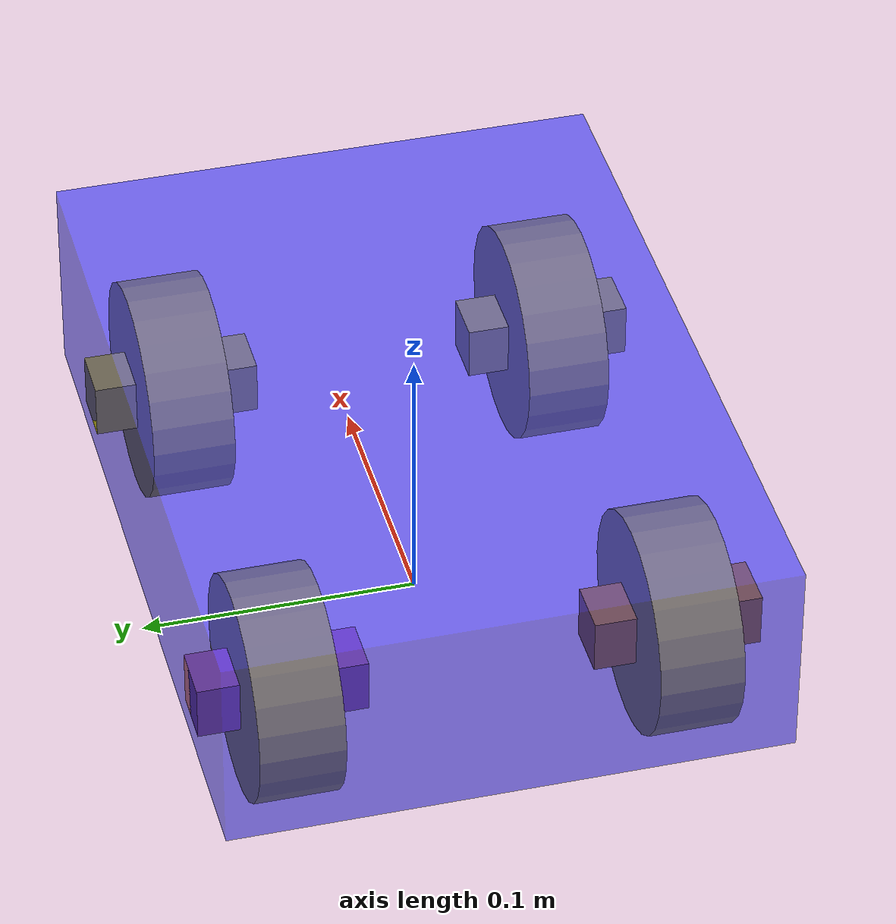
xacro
<?xml version="1.0" ?>
<robot name="ackermann_base_final" xmlns:xacro="http://www.ros.org/wiki/xacro">
    <!-- 参数 -->
    <xacro:property name="PI" value="3.1415926" />
    <!-- 车轮参数 -->
    <xacro:property name="wheel_radius" value="0.04" />
    <xacro:property name="wheel_height" value="0.03" />
    <xacro:property name="wheel_in" value="0.0125" />
    <!-- 基座参数 -->
    <xacro:property name="base_height" value="0.075" />
    <xacro:property name="base_length" value="0.275" />
    <xacro:property name="base_width" value="0.2" />
    <!-- 车轮参数 -->
    <xacro:property name="steering_link_length" value="0.02" />
    <xacro:property name="steering_link_width" value="0.06" />
    <xacro:property name="steering_link_height" value="0.02" />
    <!-- 基座离地高度 -->
    <xacro:property name="base_ground_clearance" value="0.02" />
    <!-- 质量参数 -->
    <xacro:property name="base_m" value="2" />
    <xacro:property name="wheel_m" value="0.5" />
    <xacro:property name="steering_link_m" value="0.05" />

    <xacro:include filename="inertial_matrix.xacro"/>

    <link name="base_footprint">
        <visual>
            <origin xyz="0.0 0.0 0.0" rpy="0.0 0.0 0.0"/>
            <geometry>
                <sphere radius="0.001"/>
            </geometry>
            <material name="yellow">
                <color rgba="0.8 0.3 0.1 0.5" />
            </material>
        </visual>
        <collision>
            <origin xyz="0.0 0.0 0.0" rpy="0.0 0.0 0.0"/>
            <geometry>
                <sphere radius="0"/>
            </geometry>
        </collision>
    </link>

    <link name="base_link">
        <xacro:Box_inertial_matrix m="${base_m}" l="${base_length}" w="${base_width}" h="${base_height}" />
        <visual>
            <origin xyz="0.0 0.0 0.0" rpy="0.0 0.0 0.0"/>
            <geometry>
                <box size="${base_length} ${base_width} ${base_height}"/>
            </geometry>
            <material name="blue">
                <color rgba="0 0 1.0 0.5" />
            </material>
        </visual>
        <collision>
            <origin xyz="0.0 0.0 0.0" rpy="0.0 0.0 0.0"/>
            <geometry>
                <box size="0 0 0"/>
            </geometry>
        </collision>
    </link>
    <gazebo reference="base_link">
            <material>Gazebo/Blue</material>
        </gazebo>
    <joint name="base_link2base_footprint" type="fixed">
        <parent link="base_footprint"/>
        <child link="base_link"/>
        <origin xyz="0.0 0.0 ${base_ground_clearance+base_height/2+0.001}" rpy="0.0 0.0 0.0"/>
    </joint>

    <xacro:macro name="define_steer_joint" params="name flag">
        <link name="${name}_steer_link">
            <xacro:Box_inertial_matrix m="${steering_link_m}" l="${steering_link_length}" w="${steering_link_width}" h="${steering_link_height}" />
            <visual>
                <origin xyz="0.0 0.0 0.0" rpy="0.0 0.0 0.0"/>
                <geometry>
                    <box size="${steering_link_length} ${steering_link_width} ${steering_link_height}"/>
                </geometry>
            </visual>
            <collision>
                <origin xyz="0.0 0.0 0.0" rpy="0.0 0.0 0.0"/>
                <geometry>
                    <box size="0 0 0"/>
                </geometry>
            </collision>
        </link>
        <joint name="${name}_steer_link2base_link" type="revolute">
            <origin xyz="${base_length/2-wheel_in-wheel_radius} ${flag*(base_width/2-steering_link_width/2)} ${-(base_height/2 + base_ground_clearance - wheel_radius)}" rpy="0.0 0.0 0.0"/>
            <parent link="base_link"/>
            <child link="${name}_steer_link"/>
            <axis xyz="0 0 1"/>
            <dynamics damping="0.1" />
            <limit lower="-0.6" upper="0.6" effort="0" velocity="3"/>
        </joint>
        <gazebo reference="${name}_steer_link">
            <material>Gazebo/Yellow</material>
        </gazebo>
    </xacro:macro>
    <xacro:define_steer_joint name="left" flag="1" />
    <xacro:define_steer_joint name="right" flag="-1" />

    <xacro:macro name="define_front_joint" params="name flag">
        <link name="${name}_front_wheel">
            <xacro:cylinder_inertial_matrix m="${wheel_m}" r="${wheel_radius}" h="${wheel_height}" />
            <visual>
                <origin xyz="0.0 0.0 0.0" rpy="${-PI/2} 0.0 0.0"/>
                <geometry>
                    <cylinder radius="${wheel_radius}" length="${wheel_height}"/>
                </geometry>
            </visual>
            <collision>
                <origin xyz="0.0 0.0 0.0" rpy="${-PI/2} 0.0 0.0"/>
                <geometry>
                    <cylinder radius="${wheel_radius}" length="${wheel_height}"/>
                </geometry>
            </collision>
        </link>
        <gazebo reference="${name}_front_wheel">
            <material>Gazebo/Yellow</material>
        </gazebo>
        <gazebo reference="${name}_front_wheel">
            <mu1>0.9</mu1>    <!-- 显著降低静摩擦 -->
            <mu2>0.6</mu2>    <!-- 降低动摩擦 -->
        </gazebo>
        <joint name="${name}_front_wheel2${name}_steer_link" type="continuous">
            <origin xyz="0 0 0.0" rpy="0.0 0.0 0.0"/>
            <parent link="${name}_steer_link"/>
            <child link="${name}_front_wheel"/>
            <axis xyz="0 1 0"/>
        </joint>
    </xacro:macro>
    <xacro:define_front_joint name="left" flag="1" />
    <xacro:define_front_joint name="right" flag="-1" />

    <xacro:macro name="define_rear_joint" params="name flag">
        <link name="${name}_rear_link">
            <xacro:Box_inertial_matrix m="${steering_link_m}" l="${steering_link_length}" w="${steering_link_width}" h="${steering_link_height}" />
            <visual>
                <origin xyz="0.0 0.0 0.0" rpy="0.0 0.0 0.0"/>
                <geometry>
                    <box size="${steering_link_length} ${steering_link_width} ${steering_link_height}"/>
                </geometry>
            </visual>
            <collision>
                <origin xyz="0.0 0.0 0.0" rpy="0.0 0.0 0.0"/>
                <geometry>
                    <box size="0 0 0"/>
                </geometry>
            </collision>
        </link>
        <link name="${name}_rear_wheel">
            <xacro:cylinder_inertial_matrix m="${wheel_m}" r="${wheel_radius}" h="${wheel_height}" />
            <visual>
                <origin xyz="0.0 0.0 0.0" rpy="${-PI/2} 0.0 0.0"/>
                <geometry>
                    <cylinder radius="${wheel_radius}" length="${wheel_height}"/>
                </geometry>
            </visual>
            <collision>
                <origin xyz="0.0 0.0 0.0" rpy="${-PI/2} 0.0 0.0"/>
                <geometry>
                    <cylinder radius="${wheel_radius}" length="${wheel_height}"/>
                </geometry>
            </collision>
        </link>
        <gazebo reference="${name}_rear_wheel">
            <mu1>1.8</mu1>    <!-- 大幅提高静摩擦 -->
            <mu2>1.2</mu2>    <!-- 提高动摩擦 -->
        </gazebo>
        <joint name="${name}_rear_link2base_link" type="fixed">
            <origin xyz="${-base_length/2+wheel_in+wheel_radius} ${flag*(base_width/2-steering_link_width/2)} ${-(base_height/2 + base_ground_clearance - wheel_radius)}" rpy="0.0 0.0 0.0"/>
            <parent link="base_link"/>
            <child link="${name}_rear_link"/>
        </joint>
        <joint name="${name}_rear_wheel2${name}_rear_link" type="continuous">
            <origin xyz="0 0 0.0" rpy="0.0 0.0 0.0"/>
            <parent link="${name}_rear_link"/>
            <child link="${name}_rear_wheel"/>
            <axis xyz="0 1 0"/>
        </joint>
        <gazebo reference="${name}_rear_wheel">
            <material>Gazebo/Yellow</material>
        </gazebo>
    </xacro:macro>
    <xacro:define_rear_joint name="left" flag="1" />
    <xacro:define_rear_joint name="right" flag="-1" />
    <xacro:macro name="define_wheel_trans" params="left_right front_rear steer_rear">
        <transmission name="${left_right}_${front_rear}_wheel_trans">
            <type>transmission_interface/SimpleTransmission</type>
            <joint name="${left_right}_${front_rear}_wheel2${left_right}_${steer_rear}_link">
                <hardwareInterface>hardware_interface/VelocityJointInterface</hardwareInterface>
            </joint>
            <actuator name="${left_right}_${front_rear}_wheel_actuator">
                <mechanicalReduction>1.0</mechanicalReduction>
                <hardwareInterface>hardware_interface/VelocityJointInterface</hardwareInterface>
            </actuator>
        </transmission>
    </xacro:macro>
    <xacro:macro name="define_steer_trans" params="left_right">
        <transmission name="${left_right}_steer_trans">
            <type>transmission_interface/SimpleTransmission</type>
            <joint name="${left_right}_steer_link2base_link">
                <hardwareInterface>hardware_interface/PositionJointInterface</hardwareInterface>
            </joint>
            <actuator name="${left_right}_steer_actuator">
                <mechanicalReduction>1.0</mechanicalReduction>
                <hardwareInterface>hardware_interface/PositionJointInterface</hardwareInterface>
            </actuator>
        </transmission>
    </xacro:macro>
    <xacro:define_wheel_trans left_right="left" front_rear="rear" steer_rear="rear" />
    <xacro:define_wheel_trans left_right="right" front_rear="rear" steer_rear="rear" />
    <xacro:define_steer_trans left_right="left" />
    <xacro:define_steer_trans left_right="right" />
    <gazebo>
        <plugin name="gazebo_ros_control" filename="libgazebo_ros_control.so">
            <robotNamespace>ackermann_base_final</robotNamespace>
            <robotParam>robot_description</robotParam>
            <robotSimType>gazebo_ros_control/DefaultRobotHWSim</robotSimType>
            <legacyModeNS>true</legacyModeNS>
            <robotBaseFrame>base_footprint</robotBaseFrame>
        </plugin>
    </gazebo>
    <gazebo reference="base_footprint">
        <turnGravityOff>true</turnGravityOff>
    </gazebo>

	<gazebo reference="base_link">
		<gravity>true</gravity>
		<sensor name="imu_sensor" type="imu">
		<always_on>true</always_on>
		<update_rate>100</update_rate>
		<visualize>true</visualize>
		<topic>__default_topic__</topic>
		<plugin filename="libgazebo_ros_imu_sensor.so" name="imu_plugin">
		    <robotNamespace>ackermann_base_final</robotNamespace>
		    <topicName>imu</topicName>
		    <appendRobotNamespace>false</appendRobotNamespace>
		    <bodyName>base_link</bodyName>
		    <updateRateHZ>100.0</updateRateHZ>
		    <gaussianNoise>0.0</gaussianNoise>
		    <xyzOffset>0 0 0</xyzOffset>
		    <rpyOffset>0 0 0</rpyOffset>
		    <frameName>imu_link</frameName>
		</plugin>
		<pose>0 0 0 0 0 0</pose>
		</sensor>
	</gazebo>

</robot>

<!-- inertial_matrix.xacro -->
<robot name="ackermann_base_final" xmlns:xacro="http://wiki.ros.org/xacro">
    <!-- Macro for inertia matrix -->
    <xacro:macro name="sphere_inertial_matrix" params="m r">
        <inertial>
            <mass value="${m}" />
            <inertia ixx="${2*m*r*r/5}" ixy="0" ixz="0"
                iyy="${2*m*r*r/5}" iyz="0"
                izz="${2*m*r*r/5}" />
        </inertial>
    </xacro:macro>

    <xacro:macro name="cylinder_inertial_matrix" params="m r h">
        <inertial>
            <mass value="${m}" />
            <inertia ixx="${m*(3*r*r+h*h)/12}" ixy = "0" ixz = "0"
                iyy="${m*(3*r*r+h*h)/12}" iyz = "0"
                izz="${m*r*r/2}" />
        </inertial>
    </xacro:macro>

    <xacro:macro name="Box_inertial_matrix" params="m l w h">
       <inertial>
               <mass value="${m}" />
               <inertia ixx="${m*(h*h + l*l)/12}" ixy = "0" ixz = "0"
                   iyy="${m*(w*w + l*l)/12}" iyz= "0"
                   izz="${m*(w*w + h*h)/12}" />
       </inertial>
   </xacro:macro>
</robot>
